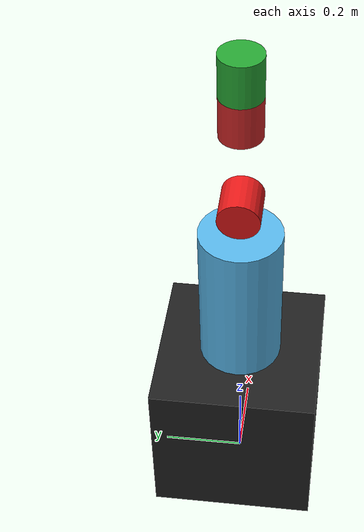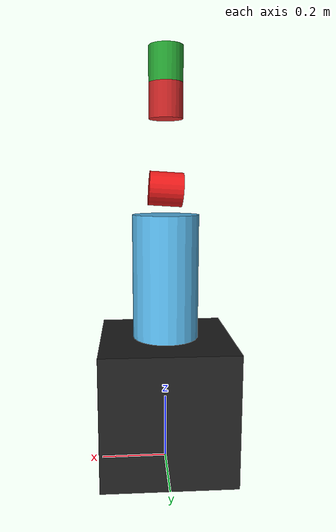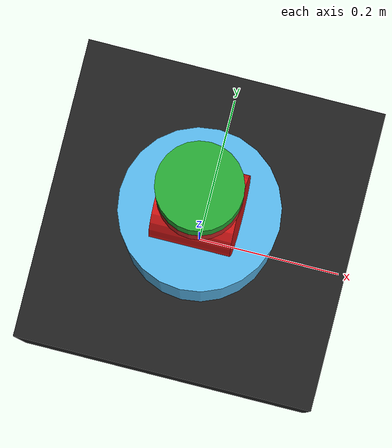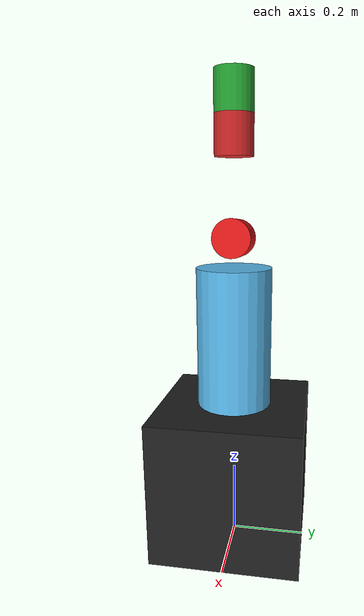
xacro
<?xml version="1.0"?>
<robot name="guiding_station">
 <link name="gs_base_link">
    <visual>
        <origin xyz="0 0 0.2" rpy="0 0 0"/>
        <geometry>
            <box size="0.4 0.4 0.4"/>
        </geometry>
    </visual>

    <collision>
        <origin xyz="0 0 0.2" rpy="0 0 0"/>
        <geometry>
            <box size="0.4 0.4 0.4"/>
        </geometry>
    </collision>

    <inertial>
        <origin xyz="0 0 0.2" rpy="0 0 0"/>
        <mass value="100.0"/>
         <inertia
            ixx="4.4744" ixy="0.03098" ixz="0.003647"
            iyy="7.1624" iyz="0.1228"
            izz="4.6155"/>
    </inertial>
</link>

 <link name="gimbal_yaw_link">
    <visual>
    <origin xyz="0 0 0" rpy="0 0 0"/>
        <geometry>
            <cylinder length="0.55" radius="0.1"/>
        </geometry>
    </visual>
</link>

<joint name="gimbal_yaw_joint" type="fixed">
    <origin xyz="0 0 0.5" rpy="0 0 0"/>
    <parent link="gs_base_link"/>
    <child link="gimbal_yaw_link"/>
</joint>

<joint name="LED_joint_R" type="fixed">
    <origin xyz="0 0 0" rpy="0 0 0"/>
    <parent link="gimbal_yaw_link"/>
    <child link="gimbal_LED_RED_link"/>
</joint>
<joint name="LED_joint_G" type="fixed">
    <origin xyz="0 0 0" rpy="0 0 0"/>
    <parent link="gimbal_yaw_link"/>
    <child link="gimbal_LED_GREEN_link"/>
</joint>
 <link name="gimbal_LED_RED_link">
    <visual>
    <origin xyz="0 0 0.6" rpy="0 0 0"/>
        <geometry>
            <cylinder length="0.1" radius="0.05"/>
        </geometry>
    </visual>
</link>
 <link name="gimbal_LED_GREEN_link">
    <visual>
    <origin xyz="0 0 0.7" rpy="0 0 0"/>
        <geometry>
            <cylinder length="0.1" radius="0.05"/>
        </geometry>
    </visual>
</link>

<link name="gimbal_pitch_link">
    <visual>
    <origin xyz="0 0 0" rpy="0 1.51 0"/>
        <geometry>
            <cylinder length="0.1" radius="0.05"/>
        </geometry>
      <material name="red">
        <color rgba="0.9 0.1 0.1 1"/>
      </material>
    </visual>
</link>
<joint name="gimbal_pitch_joint" type="fixed">
    <origin xyz="0 0 0.35" rpy="0 0 0"/>
    <parent link="gimbal_yaw_link"/>
    <child link="gimbal_pitch_link"/>
</joint>

<gazebo reference="gs_base_link">
<material>Gazebo/Black</material>
</gazebo>
<gazebo reference="gimbal_LED_RED_link">
<material>Gazebo/Red</material>
</gazebo>
<gazebo reference="gimbal_LED_GREEN_link">
<material>Gazebo/Green</material>
</gazebo>
<gazebo reference="gs_base_link">
<material>Gazebo/Black</material>
</gazebo>

</robot>
